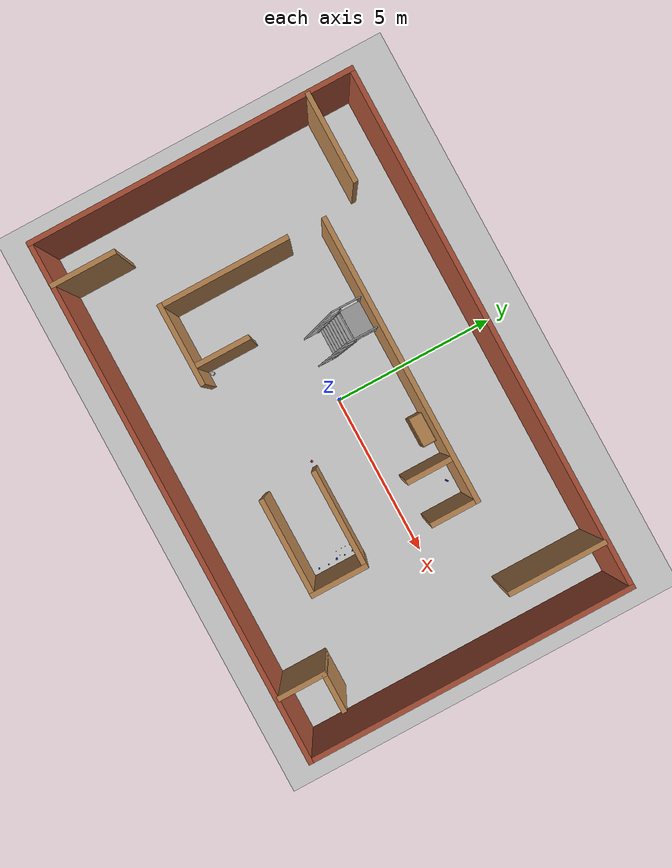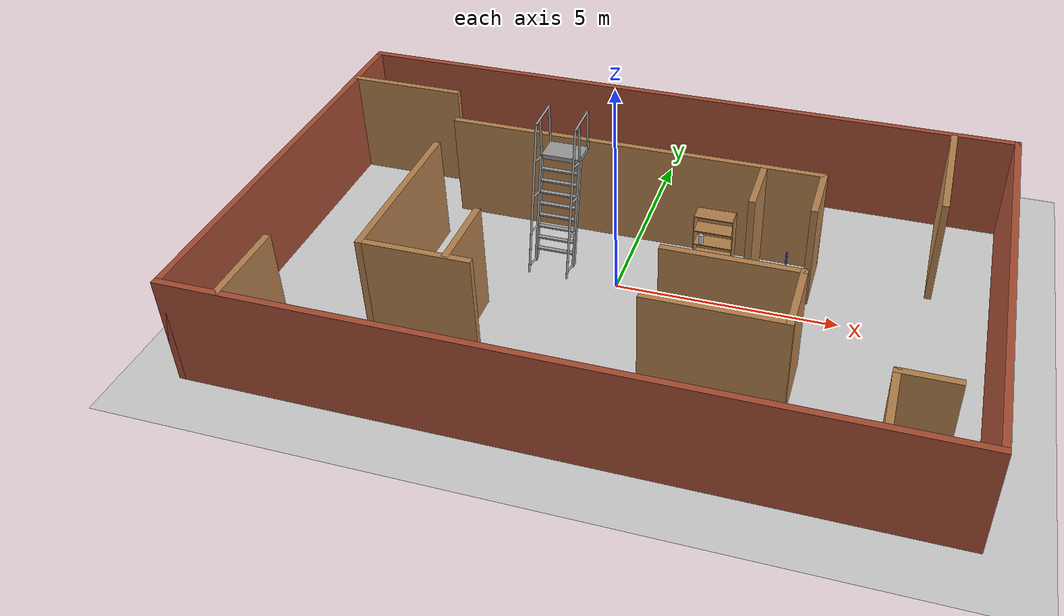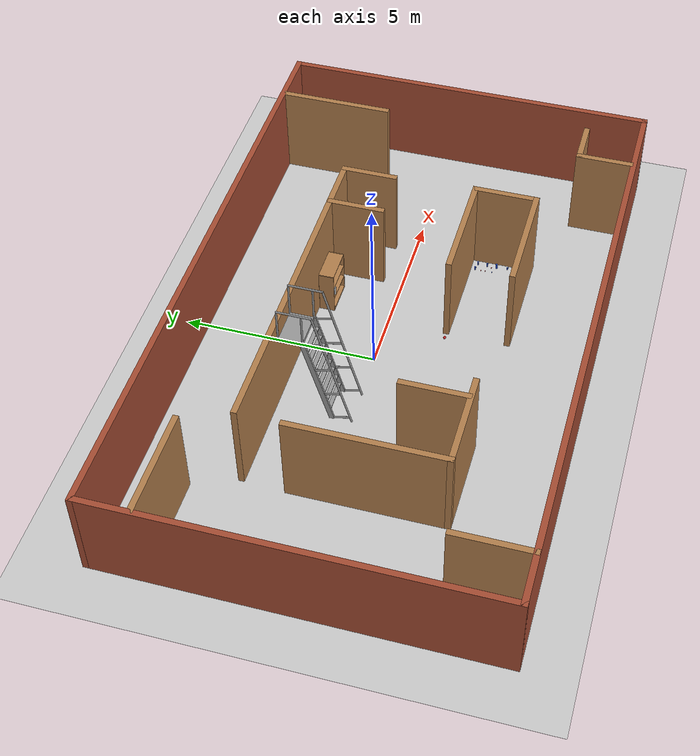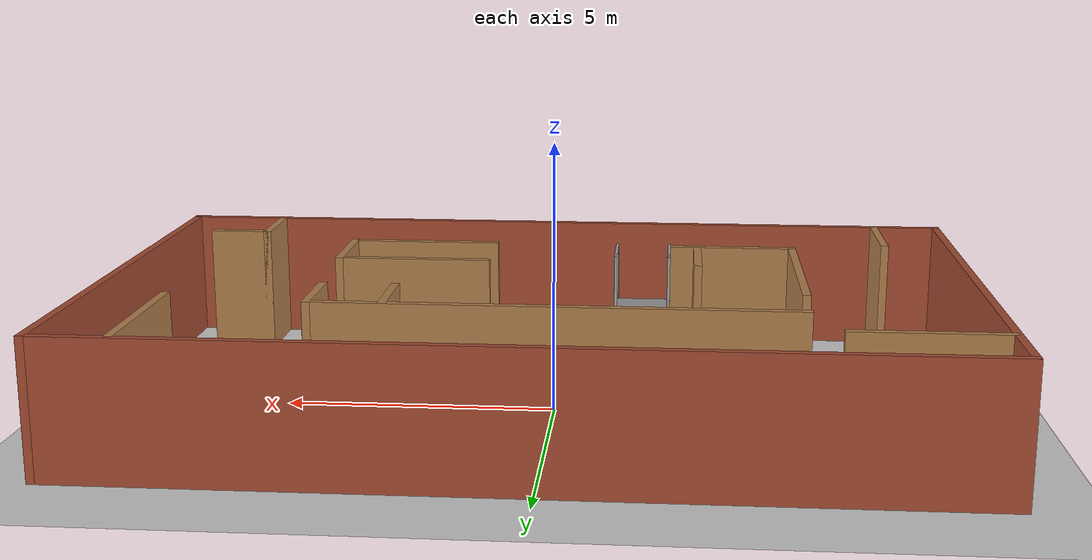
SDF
<sdf version="1.6">
 <world name="default">
  <model name="ground_plane">
   <static>1</static>
   <link name="link">
    <collision name="collision">
     <geometry><plane><normal>0 0 1</normal><size>100 100</size></plane></geometry>
     <surface><friction><ode><mu>100</mu><mu2>50</mu2></ode></friction></surface>
    </collision>
    <visual name="visual">
     <cast_shadows>0</cast_shadows>
     <geometry><plane><normal>0 0 1</normal><size>100 100</size></plane></geometry>
     <material>
      <script><uri>file://media/materials/scripts/gazebo.material</uri><name>Gazebo/Grey</name></script>
     </material>
    </visual>
   </link>
  </model>
  <model name="sim_world">
   <pose>0.267794 -0.41395 0 0 -0 0</pose>
   <link name="Wall_10">
    <collision name="Wall_10_Collision">
     <geometry><box><size>8.75 0.15 2.5</size></box></geometry>
     <pose>0 0 1.25 0 -0 0</pose>
    </collision>
    <visual name="Wall_10_Visual">
     <pose>0 0 1.25 0 -0 0</pose>
     <geometry><box><size>8.75 0.15 2.5</size></box></geometry>
     <material>
      <script><uri>file://media/materials/scripts/gazebo.material</uri><name>Gazebo/Wood</name></script>
      <ambient>1 1 1 1</ambient>
     </material>
    </visual>
    <pose>-0.406828 2.37058 0 0 -0 0</pose>
   </link>
   <link name="Wall_11">
    <collision name="Wall_11_Collision">
     <geometry><box><size>1.5 0.15 2.5</size></box></geometry>
     <pose>0 0 1.25 0 -0 0</pose>
    </collision>
    <visual name="Wall_11_Visual">
     <pose>0 0 1.25 0 -0 0</pose>
     <geometry><box><size>1.5 0.15 2.5</size></box></geometry>
     <material>
      <script><uri>file://media/materials/scripts/gazebo.material</uri><name>Gazebo/Wood</name></script>
      <ambient>1 1 1 1</ambient>
     </material>
    </visual>
    <pose>3.89317 1.69558 0 0 0 -1.5708</pose>
   </link>
   <link name="Wall_13">
    <collision name="Wall_13_Collision">
     <geometry><box><size>1.75 0.15 2.5</size></box></geometry>
     <pose>0 0 1.25 0 -0 0</pose>
    </collision>
    <visual name="Wall_13_Visual">
     <pose>0 0 1.25 0 -0 0</pose>
     <geometry><box><size>1.75 0.15 2.5</size></box></geometry>
     <material>
      <script><uri>file://media/materials/scripts/gazebo.material</uri><name>Gazebo/Wood</name></script>
      <ambient>1 1 1 1</ambient>
     </material>
    </visual>
    <pose>4.02246 -1.92918 0 0 0 -1.5708</pose>
   </link>
   <link name="Wall_14">
    <collision name="Wall_14_Collision">
     <geometry><box><size>3 0.15 2.5</size></box></geometry>
     <pose>0 0 1.25 0 -0 0</pose>
    </collision>
    <visual name="Wall_14_Visual">
     <pose>0 0 1.25 0 -0 0</pose>
     <geometry><box><size>3 0.15 2.5</size></box></geometry>
     <material>
      <script><uri>file://media/materials/scripts/gazebo.material</uri><name>Gazebo/Wood</name></script>
      <ambient>1 1 1 1</ambient>
     </material>
    </visual>
    <pose>2.59746 -2.72919 0 0 -0 3.14159</pose>
   </link>
   <link name="Wall_16">
    <collision name="Wall_16_Collision">
     <geometry><box><size>2.5 0.15 2.5</size></box></geometry>
     <pose>0 0 1.25 0 -0 0</pose>
    </collision>
    <visual name="Wall_16_Visual">
     <pose>0 0 1.25 0 -0 0</pose>
     <geometry><box><size>2.5 0.15 2.5</size></box></geometry>
     <material>
      <script><uri>file://media/materials/scripts/gazebo.material</uri><name>Gazebo/Wood</name></script>
      <ambient>1 1 1 1</ambient>
     </material>
    </visual>
    <pose>-3.58888 -2.6377 0 0 -0 3.14159</pose>
   </link>
   <link name="Wall_17">
    <collision name="Wall_17_Collision">
     <geometry><box><size>4 0.15 2.5</size></box></geometry>
     <pose>0 0 1.25 0 -0 0</pose>
    </collision>
    <visual name="Wall_17_Visual">
     <pose>0 0 1.25 0 -0 0</pose>
     <geometry><box><size>4 0.15 2.5</size></box></geometry>
     <material>
      <script><uri>file://media/materials/scripts/gazebo.material</uri><name>Gazebo/Wood</name></script>
      <ambient>1 1 1 1</ambient>
     </material>
    </visual>
    <pose>-4.76388 -0.712703 0 0 -0 1.5708</pose>
   </link>
   <link name="Wall_19">
    <collision name="Wall_19_Collision">
     <geometry><box><size>1.75 0.15 2.5</size></box></geometry>
     <pose>0 0 1.25 0 -0 0</pose>
    </collision>
    <visual name="Wall_19_Visual">
     <pose>0 0 1.25 0 -0 0</pose>
     <geometry><box><size>1.75 0.15 2.5</size></box></geometry>
     <material>
      <script><uri>file://media/materials/scripts/gazebo.material</uri><name>Gazebo/Wood</name></script>
      <ambient>1 1 1 1</ambient>
     </material>
    </visual>
    <pose>-2.89661 -1.78839 0 0 0 -1.5708</pose>
   </link>
   <link name="Wall_21">
    <collision name="Wall_21_Collision">
     <geometry><box><size>2 0.15 2.5</size></box></geometry>
     <pose>0 0 1.25 0 -0 0</pose>
    </collision>
    <visual name="Wall_21_Visual">
     <pose>0 0 1.25 0 -0 0</pose>
     <geometry><box><size>2 0.15 2.5</size></box></geometry>
     <material>
      <script><uri>file://media/materials/scripts/gazebo.material</uri><name>Gazebo/Wood</name></script>
      <ambient>1 1 1 1</ambient>
     </material>
    </visual>
    <pose>-6.63773 -3.98509 0 0 0 -1.5708</pose>
   </link>
   <link name="Wall_23">
    <collision name="Wall_23_Collision">
     <geometry><box><size>2.75 0.15 2.5</size></box></geometry>
     <pose>0 0 1.25 0 -0 0</pose>
    </collision>
    <visual name="Wall_23_Visual">
     <pose>0 0 1.25 0 -0 0</pose>
     <geometry><box><size>2.75 0.15 2.5</size></box></geometry>
     <material>
      <script><uri>file://media/materials/scripts/gazebo.material</uri><name>Gazebo/Wood</name></script>
      <ambient>1 1 1 1</ambient>
     </material>
    </visual>
    <pose>-6.56466 3.57739 0 0 -0 0</pose>
   </link>
   <link name="Wall_25">
    <collision name="Wall_25_Collision">
     <geometry><box><size>1.5 0.15 2.5</size></box></geometry>
     <pose>0 0 1.25 0 -0 0</pose>
    </collision>
    <visual name="Wall_25_Visual">
     <pose>0 0 1.25 0 -0 0</pose>
     <geometry><box><size>1.5 0.15 2.5</size></box></geometry>
     <material>
      <script><uri>file://media/materials/scripts/gazebo.material</uri><name>Gazebo/Wood</name></script>
      <ambient>1 1 1 1</ambient>
     </material>
    </visual>
    <pose>2.57429 1.67546 0 0 0 -1.5708</pose>
   </link>
   <link name="Wall_27">
    <collision name="Wall_27_Collision">
     <geometry><box><size>3 0.15 2.5</size></box></geometry>
     <pose>0 0 1.25 0 -0 0</pose>
    </collision>
    <visual name="Wall_27_Visual">
     <pose>0 0 1.25 0 -0 0</pose>
     <geometry><box><size>3 0.15 2.5</size></box></geometry>
     <material>
      <script><uri>file://media/materials/scripts/gazebo.material</uri><name>Gazebo/Wood</name></script>
      <ambient>1 1 1 1</ambient>
     </material>
    </visual>
    <pose>6.51654 3.39943 0 0 0 -1.5708</pose>
   </link>
   <link name="Wall_29">
    <collision name="Wall_29_Collision">
     <geometry><box><size>1.5 0.15 2.5</size></box></geometry>
     <pose>0 0 1.25 0 -0 0</pose>
    </collision>
    <visual name="Wall_29_Visual">
     <pose>0 0 1.25 0 -0 0</pose>
     <geometry><box><size>1.5 0.15 2.5</size></box></geometry>
     <material>
      <script><uri>file://media/materials/scripts/gazebo.material</uri><name>Gazebo/Wood</name></script>
      <ambient>1 1 1 1</ambient>
     </material>
    </visual>
    <pose>6.03382 -4.15508 0 0 -0 1.5708</pose>
   </link>
   <link name="Wall_30">
    <collision name="Wall_30_Collision">
     <geometry><box><size>1.25 0.15 2.5</size></box></geometry>
     <pose>0 0 1.25 0 -0 0</pose>
    </collision>
    <visual name="Wall_30_Visual">
     <pose>0 0 1.25 0 -0 0</pose>
     <geometry><box><size>1.25 0.15 2.5</size></box></geometry>
     <material>
      <script><uri>file://media/materials/scripts/gazebo.material</uri><name>Gazebo/Wood</name></script>
      <ambient>1 1 1 1</ambient>
     </material>
    </visual>
    <pose>6.58382 -3.48008 0 0 -0 0</pose>
   </link>
   <link name="Wall_32">
    <collision name="Wall_32_Collision">
     <geometry><box><size>3 0.15 2.5</size></box></geometry>
     <pose>0 0 1.25 0 -0 0</pose>
    </collision>
    <visual name="Wall_32_Visual">
     <pose>0 0 1.25 0 -0 0</pose>
     <geometry><box><size>3 0.15 2.5</size></box></geometry>
     <material>
      <script><uri>file://media/materials/scripts/gazebo.material</uri><name>Gazebo/Wood</name></script>
      <ambient>1 1 1 1</ambient>
     </material>
    </visual>
    <pose>2.59746 -1.12919 0 0 -0 3.14159</pose>
   </link>
   <link name="Wall_4">
    <collision name="Wall_4_Collision">
     <geometry><box><size>10 0.15 2.5</size></box></geometry>
     <pose>0 0 1.25 0 -0 0</pose>
    </collision>
    <visual name="Wall_4_Visual">
     <pose>0 0 1.25 0 -0 0</pose>
     <geometry><box><size>10 0.15 2.5</size></box></geometry>
     <material>
      <script><uri>file://media/materials/scripts/gazebo.material</uri><name>Gazebo/Bricks</name></script>
      <ambient>1 1 1 1</ambient>
     </material>
    </visual>
    <pose>-7.925 0 0 0 0 -1.5708</pose>
   </link>
   <link name="Wall_5">
    <collision name="Wall_5_Collision">
     <geometry><box><size>16 0.15 2.5</size></box></geometry>
     <pose>0 0 1.25 0 -0 0</pose>
    </collision>
    <visual name="Wall_5_Visual">
     <pose>0 0 1.25 0 -0 0</pose>
     <geometry><box><size>16 0.15 2.5</size></box></geometry>
     <material>
      <script><uri>file://media/materials/scripts/gazebo.material</uri><name>Gazebo/Bricks</name></script>
      <ambient>1 1 1 1</ambient>
     </material>
    </visual>
    <pose>0 -4.925 0 0 -0 0</pose>
   </link>
   <link name="Wall_6">
    <collision name="Wall_6_Collision">
     <geometry><box><size>10 0.15 2.5</size></box></geometry>
     <pose>0 0 1.25 0 -0 0</pose>
    </collision>
    <visual name="Wall_6_Visual">
     <pose>0 0 1.25 0 -0 0</pose>
     <geometry><box><size>10 0.15 2.5</size></box></geometry>
     <material>
      <script><uri>file://media/materials/scripts/gazebo.material</uri><name>Gazebo/Bricks</name></script>
      <ambient>1 1 1 1</ambient>
     </material>
    </visual>
    <pose>7.925 0 0 0 -0 1.5708</pose>
   </link>
   <link name="Wall_7">
    <collision name="Wall_7_Collision">
     <geometry><box><size>16 0.15 2.5</size></box></geometry>
     <pose>0 0 1.25 0 -0 0</pose>
    </collision>
    <visual name="Wall_7_Visual">
     <pose>0 0 1.25 0 -0 0</pose>
     <geometry><box><size>16 0.15 2.5</size></box></geometry>
     <material>
      <script><uri>file://media/materials/scripts/gazebo.material</uri><name>Gazebo/Bricks</name></script>
      <ambient>1 1 1 1</ambient>
     </material>
    </visual>
    <pose>0 4.925 0 0 -0 3.14159</pose>
   </link>
   <static>1</static>
  </model>
  <model name="beer">
   <link name="link">
    <pose>0 0 0.115 0 -0 0</pose>
    <inertial>
     <mass>0.39</mass>
     <inertia><ixx>0.00058</ixx><ixy>0</ixy><ixz>0</ixz><iyy>0.00058</iyy><iyz>0</iyz><izz>0.00019</izz></inertia>
    </inertial>
    <collision name="collision">
     <geometry><cylinder><radius>0.055</radius><length>0.23</length></cylinder></geometry>
    </collision>
    <visual name="visual">
     <geometry><cylinder><radius>0.055</radius><length>0.23</length></cylinder></geometry>
     <material>
      <script>
       <uri>model://beer/materials/scripts</uri>
       <uri>model://beer/materials/textures</uri>
       <name>Beer/Diffuse</name>
      </script>
     </material>
    </visual>
   </link>
   <pose>-2.46122 -2.87947 -7e-06 -1e-06 -0 -5.2e-05</pose>
  </model>
  <model name="bookshelf">
   <static>1</static>
   <link name="link">
    <inertial><mass>1</mass></inertial>
    <collision name="back">
     <pose>0 0.005 0.6 0 -0 0</pose>
     <geometry><box><size>0.9 0.01 1.2</size></box></geometry>
    </collision>
    <visual name="visual1">
     <pose>0 0.005 0.6 0 -0 0</pose>
     <geometry><box><size>0.9 0.01 1.2</size></box></geometry>
     <material>
      <script><uri>file://media/materials/scripts/gazebo.material</uri><name>Gazebo/Wood</name></script>
     </material>
    </visual>
    <collision name="left_side">
     <pose>0.45 -0.195 0.6 0 -0 0</pose>
     <geometry><box><size>0.02 0.4 1.2</size></box></geometry>
    </collision>
    <visual name="visual2">
     <pose>0.45 -0.195 0.6 0 -0 0</pose>
     <geometry><box><size>0.02 0.4 1.2</size></box></geometry>
     <material>
      <script><uri>file://media/materials/scripts/gazebo.material</uri><name>Gazebo/Wood</name></script>
     </material>
    </visual>
    <collision name="right_side">
     <pose>-0.45 -0.195 0.6 0 -0 0</pose>
     <geometry><box><size>0.02 0.4 1.2</size></box></geometry>
    </collision>
    <visual name="visual3">
     <pose>-0.45 -0.195 0.6 0 -0 0</pose>
     <geometry><box><size>0.02 0.4 1.2</size></box></geometry>
     <material>
      <script><uri>file://media/materials/scripts/gazebo.material</uri><name>Gazebo/Wood</name></script>
     </material>
    </visual>
    <collision name="bottom">
     <pose>0 -0.195 0.03 0 -0 0</pose>
     <geometry><box><size>0.88 0.4 0.06</size></box></geometry>
    </collision>
    <visual name="visual4">
     <pose>0 -0.195 0.03 0 -0 0</pose>
     <geometry><box><size>0.88 0.4 0.06</size></box></geometry>
     <material>
      <script><uri>file://media/materials/scripts/gazebo.material</uri><name>Gazebo/Wood</name></script>
     </material>
    </visual>
    <collision name="top">
     <pose>0 -0.195 1.19 0 -0 0</pose>
     <geometry><box><size>0.88 0.4 0.02</size></box></geometry>
    </collision>
    <visual name="visual5">
     <pose>0 -0.195 1.19 0 -0 0</pose>
     <geometry><box><size>0.88 0.4 0.02</size></box></geometry>
     <material>
      <script><uri>file://media/materials/scripts/gazebo.material</uri><name>Gazebo/Wood</name></script>
     </material>
    </visual>
    <collision name="low_shelf">
     <pose>0 -0.195 0.43 0 -0 0</pose>
     <geometry><box><size>0.88 0.4 0.02</size></box></geometry>
    </collision>
    <visual name="visual6">
     <pose>0 -0.195 0.43 0 -0 0</pose>
     <geometry><box><size>0.88 0.4 0.02</size></box></geometry>
     <material>
      <script><uri>file://media/materials/scripts/gazebo.material</uri><name>Gazebo/Wood</name></script>
     </material>
    </visual>
    <collision name="high_shelf">
     <pose>0 -0.195 0.8 0 -0 0</pose>
     <geometry><box><size>0.88 0.4 0.02</size></box></geometry>
    </collision>
    <visual name="visual7">
     <pose>0 -0.195 0.8 0 -0 0</pose>
     <geometry><box><size>0.88 0.4 0.02</size></box></geometry>
     <material>
      <script><uri>file://media/materials/scripts/gazebo.material</uri><name>Gazebo/Wood</name></script>
     </material>
    </visual>
   </link>
   <pose>1.85905 1.85884 0 0 -0 0</pose>
  </model>
  <model name="beer_0">
   <link name="link">
    <pose>0 0 0.115 0 -0 0</pose>
    <inertial>
     <mass>0.39</mass>
     <inertia><ixx>0.00058</ixx><ixy>0</ixy><ixz>0</ixz><iyy>0.00058</iyy><iyz>0</iyz><izz>0.00019</izz></inertia>
    </inertial>
    <collision name="collision">
     <geometry><cylinder><radius>0.055</radius><length>0.23</length></cylinder></geometry>
    </collision>
    <visual name="visual">
     <geometry><cylinder><radius>0.055</radius><length>0.23</length></cylinder></geometry>
     <material>
      <script>
       <uri>model://beer/materials/scripts</uri>
       <uri>model://beer/materials/textures</uri>
       <name>Beer/Diffuse</name>
      </script>
     </material>
    </visual>
   </link>
   <pose>1.58661 1.52296 0.440001 7e-06 -1.7e-05 0.002495</pose>
  </model>
  <model name="cricket_ball">
   <link name="link">
    <pose>0 0 0.0375 0 -0 0</pose>
    <inertial>
     <mass>0.1467</mass>
     <inertia>
      <ixx>8.25187e-05</ixx>
      <ixy>0</ixy>
      <ixz>0</ixz>
      <iyy>8.25187e-05</iyy>
      <iyz>0</iyz>
      <izz>8.25187e-05</izz>
     </inertia>
    </inertial>
    <collision name="collision">
     <geometry><sphere><radius>0.0375</radius></sphere></geometry>
     <surface>
      <contact>
       <poissons_ratio>0.347</poissons_ratio>
       <elastic_modulus>8.8e+09</elastic_modulus>
       <ode><kp>100000</kp><kd>100</kd><max_vel>100</max_vel><min_depth>0.001</min_depth></ode>
      </contact>
      <friction>
       <torsional>
        <coefficient>1</coefficient>
        <use_patch_radius>0</use_patch_radius>
        <surface_radius>0.01</surface_radius>
       </torsional>
      </friction>
     </surface>
    </collision>
    <visual name="visual">
     <geometry><sphere><radius>0.0375</radius></sphere></geometry>
     <material>
      <script><uri>file://media/materials/scripts/gazebo.material</uri><name>Gazebo/Red</name></script>
     </material>
    </visual>
    <velocity_decay><linear>0</linear><angular>0.005</angular></velocity_decay>
   </link>
   <pose>1.19589 -1.5526 -0.001014 0 -0 0</pose>
  </model>
  <model name="my_cylinder_blue_0">
   <static>0</static>
   <link name="link">
    <collision name="collision">
     <geometry><cylinder><radius>0.02</radius><length>0.1</length></cylinder></geometry>
     <surface><friction><ode><mu>100</mu><mu2>50</mu2></ode></friction></surface>
    </collision>
    <visual name="visual">
     <geometry><cylinder><radius>0.02</radius><length>0.1</length></cylinder></geometry>
     <material>
      <script><uri>file://media/materials/scripts/gazebo.material</uri><name>Gazebo/Blue</name></script>
     </material>
    </visual>
    <inertial>
     <inertia><ixx>1</ixx><ixy>0</ixy><ixz>0</ixz><iyy>1</iyy><iyz>0</iyz><izz>1</izz></inertia>
     <mass>1</mass>
    </inertial>
   </link>
   <pose>4.07575 -1.76243 0.049991 -1e-06 -2.7e-05 2e-06</pose>
  </model>
  <model name="my_cylinder_blue_1">
   <static>0</static>
   <link name="link">
    <collision name="collision">
     <geometry><cylinder><radius>0.02</radius><length>0.1</length></cylinder></geometry>
     <surface><friction><ode><mu>100</mu><mu2>50</mu2></ode></friction></surface>
    </collision>
    <visual name="visual">
     <geometry><cylinder><radius>0.02</radius><length>0.1</length></cylinder></geometry>
     <material>
      <script><uri>file://media/materials/scripts/gazebo.material</uri><name>Gazebo/Blue</name></script>
     </material>
    </visual>
    <inertial>
     <inertia><ixx>1</ixx><ixy>0</ixy><ixz>0</ixz><iyy>1</iyy><iyz>0</iyz><izz>1</izz></inertia>
     <mass>1</mass>
    </inertial>
   </link>
   <pose>4.07908 -2.01958 0.049991 -0 -4e-06 -3e-06</pose>
  </model>
  <model name="my_cylinder_blue_2">
   <static>0</static>
   <link name="link">
    <collision name="collision">
     <geometry><cylinder><radius>0.0251442</radius><length>0.139254</length></cylinder></geometry>
     <surface><friction><ode><mu>100</mu><mu2>50</mu2></ode></friction></surface>
    </collision>
    <visual name="visual">
     <geometry><cylinder><radius>0.0251442</radius><length>0.139254</length></cylinder></geometry>
     <material>
      <script><uri>file://media/materials/scripts/gazebo.material</uri><name>Gazebo/Blue</name></script>
     </material>
    </visual>
    <inertial>
     <inertia><ixx>1</ixx><ixy>0</ixy><ixz>0</ixz><iyy>1</iyy><iyz>0</iyz><izz>1</izz></inertia>
     <mass>1</mass>
    </inertial>
   </link>
   <pose>4.07262 -2.2745 0.069626 -2e-06 -2e-06 3e-06</pose>
  </model>
  <model name="my_cylinder_blue_3">
   <static>0</static>
   <link name="link">
    <collision name="collision">
     <geometry><cylinder><radius>0.02</radius><length>0.0564455</length></cylinder></geometry>
     <surface><friction><ode><mu>100</mu><mu2>50</mu2></ode></friction></surface>
    </collision>
    <visual name="visual">
     <geometry><cylinder><radius>0.02</radius><length>0.0564455</length></cylinder></geometry>
     <material>
      <script><uri>file://media/materials/scripts/gazebo.material</uri><name>Gazebo/Blue</name></script>
     </material>
    </visual>
    <inertial>
     <inertia><ixx>1</ixx><ixy>0</ixy><ixz>0</ixz><iyy>1</iyy><iyz>0</iyz><izz>1</izz></inertia>
     <mass>1</mass>
    </inertial>
   </link>
   <pose>4.10909 -2.56673 0.028213 -5e-06 -2.7e-05 0</pose>
  </model>
  <model name="my_cylinder_blue_4">
   <static>0</static>
   <link name="link">
    <collision name="collision">
     <geometry><cylinder><radius>0.02</radius><length>0.1</length></cylinder></geometry>
     <surface><friction><ode><mu>100</mu><mu2>50</mu2></ode></friction></surface>
    </collision>
    <visual name="visual">
     <geometry><cylinder><radius>0.02</radius><length>0.1</length></cylinder></geometry>
     <material>
      <script><uri>file://media/materials/scripts/gazebo.material</uri><name>Gazebo/Blue</name></script>
     </material>
    </visual>
    <inertial>
     <inertia><ixx>1</ixx><ixy>0</ixy><ixz>0</ixz><iyy>1</iyy><iyz>0</iyz><izz>1</izz></inertia>
     <mass>1</mass>
    </inertial>
   </link>
   <pose>4.08029 -2.86377 0.05 -3e-06 4e-06 0</pose>
  </model>
  <model name="my_cylinder_blue_5">
   <static>0</static>
   <link name="link">
    <collision name="collision">
     <geometry><cylinder><radius>0.02</radius><length>0.1</length></cylinder></geometry>
     <surface><friction><ode><mu>100</mu><mu2>50</mu2></ode></friction></surface>
    </collision>
    <visual name="visual">
     <geometry><cylinder><radius>0.02</radius><length>0.1</length></cylinder></geometry>
     <material>
      <script><uri>file://media/materials/scripts/gazebo.material</uri><name>Gazebo/Blue</name></script>
     </material>
    </visual>
    <inertial>
     <inertia><ixx>1</ixx><ixy>0</ixy><ixz>0</ixz><iyy>1</iyy><iyz>0</iyz><izz>1</izz></inertia>
     <mass>1</mass>
    </inertial>
   </link>
   <pose>3.8703 -1.73368 0.05 0 1e-06 -4e-06</pose>
  </model>
  <model name="my_box_red">
   <static>0</static>
   <link name="link">
    <collision name="collision">
     <geometry><box><size>0.02 0.02 0.03</size></box></geometry>
     <surface><friction><ode><mu>100000</mu><mu2>50000</mu2></ode></friction></surface>
    </collision>
    <visual name="visual">
     <geometry><box><size>0.02 0.02 0.03</size></box></geometry>
     <material>
      <script><uri>file://media/materials/scripts/gazebo.material</uri><name>Gazebo/Red</name></script>
     </material>
    </visual>
    <inertial>
     <inertia><ixx>1</ixx><ixy>0</ixy><ixz>0</ixz><iyy>1</iyy><iyz>0</iyz><izz>1</izz></inertia>
     <mass>1</mass>
    </inertial>
   </link>
   <pose>3.86287 -1.88828 0.015 1e-06 -1e-06 0</pose>
  </model>
  <model name="my_box_red_0">
   <static>0</static>
   <link name="link">
    <collision name="collision">
     <geometry><box><size>0.02 0.02 0.03</size></box></geometry>
     <surface><friction><ode><mu>100000</mu><mu2>50000</mu2></ode></friction></surface>
    </collision>
    <visual name="visual">
     <geometry><box><size>0.02 0.02 0.03</size></box></geometry>
     <material>
      <script><uri>file://media/materials/scripts/gazebo.material</uri><name>Gazebo/Red</name></script>
     </material>
    </visual>
    <inertial>
     <inertia><ixx>1</ixx><ixy>0</ixy><ixz>0</ixz><iyy>1</iyy><iyz>0</iyz><izz>1</izz></inertia>
     <mass>1</mass>
    </inertial>
   </link>
   <pose>3.87387 -2.0082 0.015 -4e-06 1.7e-05 0</pose>
  </model>
  <model name="my_box_blue">
   <static>0</static>
   <link name="link">
    <collision name="collision">
     <geometry><box><size>0.02 0.02 0.03</size></box></geometry>
     <surface><friction><ode><mu>100000</mu><mu2>50000</mu2></ode></friction></surface>
    </collision>
    <visual name="visual">
     <geometry><box><size>0.02 0.02 0.03</size></box></geometry>
     <material>
      <script><uri>file://media/materials/scripts/gazebo.material</uri><name>Gazebo/Blue</name></script>
     </material>
    </visual>
    <inertial>
     <inertia><ixx>1</ixx><ixy>0</ixy><ixz>0</ixz><iyy>1</iyy><iyz>0</iyz><izz>1</izz></inertia>
     <mass>1</mass>
    </inertial>
   </link>
   <pose>3.86993 -2.18979 0.015 -6e-06 -2e-06 0</pose>
  </model>
  <model name="my_box_red_1">
   <static>0</static>
   <link name="link">
    <collision name="collision">
     <geometry><box><size>0.02 0.02 0.03</size></box></geometry>
     <surface><friction><ode><mu>100000</mu><mu2>50000</mu2></ode></friction></surface>
    </collision>
    <visual name="visual">
     <geometry><box><size>0.02 0.02 0.03</size></box></geometry>
     <material>
      <script><uri>file://media/materials/scripts/gazebo.material</uri><name>Gazebo/Red</name></script>
     </material>
    </visual>
    <inertial>
     <inertia><ixx>1</ixx><ixy>0</ixy><ixz>0</ixz><iyy>1</iyy><iyz>0</iyz><izz>1</izz></inertia>
     <mass>1</mass>
    </inertial>
   </link>
   <pose>4.0255 -2.14352 0.015 6e-06 -1e-06 0</pose>
  </model>
  <model name="ladder_75deg_2rails">
   <static>1</static>
   <link name="step0">
    <pose>0 0.071453 0.266667 0 -0 0</pose>
    <inertial>
     <mass>9.75482</mass>
     <inertia>
      <ixx>0.00957124</ixx>
      <iyy>0.65963</iyy>
      <izz>0.666842</izz>
      <ixy>0</ixy>
      <ixz>0</ixz>
      <iyz>0</iyz>
     </inertia>
    </inertial>
    <collision name="collision"><geometry><box><size>0.9 0.1016 0.0381</size></box></geometry></collision>
    <visual name="visual">
     <geometry><box><size>0.9 0.1016 0.0381</size></box></geometry>
     <material>
      <script><uri>file://media/materials/scripts/gazebo.material</uri><name>Gazebo/Grey</name></script>
     </material>
    </visual>
   </link>
   <link name="step1">
    <pose>0 0.142906 0.533333 0 -0 0</pose>
    <inertial>
     <mass>9.75482</mass>
     <inertia>
      <ixx>0.00957124</ixx>
      <iyy>0.65963</iyy>
      <izz>0.666842</izz>
      <ixy>0</ixy>
      <ixz>0</ixz>
      <iyz>0</iyz>
     </inertia>
    </inertial>
    <collision name="collision"><geometry><box><size>0.9 0.1016 0.0381</size></box></geometry></collision>
    <visual name="visual">
     <geometry><box><size>0.9 0.1016 0.0381</size></box></geometry>
     <material>
      <script><uri>file://media/materials/scripts/gazebo.material</uri><name>Gazebo/Grey</name></script>
     </material>
    </visual>
   </link>
   <link name="step2">
    <pose>0 0.214359 0.8 0 -0 0</pose>
    <inertial>
     <mass>9.75482</mass>
     <inertia>
      <ixx>0.00957124</ixx>
      <iyy>0.65963</iyy>
      <izz>0.666842</izz>
      <ixy>0</ixy>
      <ixz>0</ixz>
      <iyz>0</iyz>
     </inertia>
    </inertial>
    <collision name="collision"><geometry><box><size>0.9 0.1016 0.0381</size></box></geometry></collision>
    <visual name="visual">
     <geometry><box><size>0.9 0.1016 0.0381</size></box></geometry>
     <material>
      <script><uri>file://media/materials/scripts/gazebo.material</uri><name>Gazebo/Grey</name></script>
     </material>
    </visual>
   </link>
   <link name="step3">
    <pose>0 0.285812 1.06667 0 -0 0</pose>
    <inertial>
     <mass>9.75482</mass>
     <inertia>
      <ixx>0.00957124</ixx>
      <iyy>0.65963</iyy>
      <izz>0.666842</izz>
      <ixy>0</ixy>
      <ixz>0</ixz>
      <iyz>0</iyz>
     </inertia>
    </inertial>
    <collision name="collision"><geometry><box><size>0.9 0.1016 0.0381</size></box></geometry></collision>
    <visual name="visual">
     <geometry><box><size>0.9 0.1016 0.0381</size></box></geometry>
     <material>
      <script><uri>file://media/materials/scripts/gazebo.material</uri><name>Gazebo/Grey</name></script>
     </material>
    </visual>
   </link>
   <link name="step4">
    <pose>0 0.357266 1.33333 0 -0 0</pose>
    <inertial>
     <mass>9.75482</mass>
     <inertia>
      <ixx>0.00957124</ixx>
      <iyy>0.65963</iyy>
      <izz>0.666842</izz>
      <ixy>0</ixy>
      <ixz>0</ixz>
      <iyz>0</iyz>
     </inertia>
    </inertial>
    <collision name="collision"><geometry><box><size>0.9 0.1016 0.0381</size></box></geometry></collision>
    <visual name="visual">
     <geometry><box><size>0.9 0.1016 0.0381</size></box></geometry>
     <material>
      <script><uri>file://media/materials/scripts/gazebo.material</uri><name>Gazebo/Grey</name></script>
     </material>
    </visual>
   </link>
   <link name="step5">
    <pose>0 0.428719 1.6 0 -0 0</pose>
    <inertial>
     <mass>9.75482</mass>
     <inertia>
      <ixx>0.00957124</ixx>
      <iyy>0.65963</iyy>
      <izz>0.666842</izz>
      <ixy>0</ixy>
      <ixz>0</ixz>
      <iyz>0</iyz>
     </inertia>
    </inertial>
    <collision name="collision"><geometry><box><size>0.9 0.1016 0.0381</size></box></geometry></collision>
    <visual name="visual">
     <geometry><box><size>0.9 0.1016 0.0381</size></box></geometry>
     <material>
      <script><uri>file://media/materials/scripts/gazebo.material</uri><name>Gazebo/Grey</name></script>
     </material>
    </visual>
   </link>
   <link name="step6">
    <pose>0 0.500172 1.86667 0 -0 0</pose>
    <inertial>
     <mass>9.75482</mass>
     <inertia>
      <ixx>0.00957124</ixx>
      <iyy>0.65963</iyy>
      <izz>0.666842</izz>
      <ixy>0</ixy>
      <ixz>0</ixz>
      <iyz>0</iyz>
     </inertia>
    </inertial>
    <collision name="collision"><geometry><box><size>0.9 0.1016 0.0381</size></box></geometry></collision>
    <visual name="visual">
     <geometry><box><size>0.9 0.1016 0.0381</size></box></geometry>
     <material>
      <script><uri>file://media/materials/scripts/gazebo.material</uri><name>Gazebo/Grey</name></script>
     </material>
    </visual>
   </link>
   <link name="step7">
    <pose>0 0.571625 2.13333 0 -0 0</pose>
    <inertial>
     <mass>9.75482</mass>
     <inertia>
      <ixx>0.00957124</ixx>
      <iyy>0.65963</iyy>
      <izz>0.666842</izz>
      <ixy>0</ixy>
      <ixz>0</ixz>
      <iyz>0</iyz>
     </inertia>
    </inertial>
    <collision name="collision"><geometry><box><size>0.9 0.1016 0.0381</size></box></geometry></collision>
    <visual name="visual">
     <geometry><box><size>0.9 0.1016 0.0381</size></box></geometry>
     <material>
      <script><uri>file://media/materials/scripts/gazebo.material</uri><name>Gazebo/Grey</name></script>
     </material>
    </visual>
   </link>
   <link name="landing">
    <pose>0 0.943078 2.4 0 -0 0</pose>
    <inertial>
     <mass>57.6072</mass>
     <inertia><ixx>1.73518</ixx><iyy>3.89545</iyy><izz>5.6167</izz><ixy>0</ixy><ixz>0</ixz><iyz>0</iyz></inertia>
    </inertial>
    <collision name="collision"><geometry><box><size>0.9 0.6 0.1016</size></box></geometry></collision>
    <visual name="visual">
     <geometry><box><size>0.9 0.6 0.1016</size></box></geometry>
     <material>
      <script><uri>file://media/materials/scripts/gazebo.material</uri><name>Gazebo/Grey</name></script>
     </material>
    </visual>
   </link>
   <link name="left_side_wall">
    <pose>-0.45 0.321539 1.2 1.309 -0 0</pose>
    <collision name="collision"><geometry><box><size>0.0508 2.56466 0.13</size></box></geometry></collision>
    <visual name="visual">
     <geometry><box><size>0.0508 2.56466 0.13</size></box></geometry>
     <material>
      <script><uri>file://media/materials/scripts/gazebo.material</uri><name>Gazebo/Grey</name></script>
     </material>
    </visual>
   </link>
   <link name="right_side_wall">
    <pose>0.45 0.321539 1.2 1.309 -0 0</pose>
    <collision name="collision"><geometry><box><size>0.0508 2.56466 0.13</size></box></geometry></collision>
    <visual name="visual">
     <geometry><box><size>0.0508 2.56466 0.13</size></box></geometry>
     <material>
      <script><uri>file://media/materials/scripts/gazebo.material</uri><name>Gazebo/Grey</name></script>
     </material>
    </visual>
   </link>
   <link name="left_railing_long">
    <pose>-0.45 -0.053461 1.66651 -0.261799 0 0</pose>
    <collision name="collision">
     <geometry><cylinder><radius>0.02413</radius><length>3.51529</length></cylinder></geometry>
    </collision>
    <visual name="visual">
     <geometry><cylinder><radius>0.02413</radius><length>3.51529</length></cylinder></geometry>
     <material>
      <script><uri>file://media/materials/scripts/gazebo.material</uri><name>Gazebo/Grey</name></script>
     </material>
    </visual>
   </link>
   <link name="left_railing_upright0">
    <pose>-0.45 -0.210089 0.056293 1.309 -0 0</pose>
    <collision name="collision">
     <geometry><cylinder><radius>0.02413</radius><length>0.482963</length></cylinder></geometry>
    </collision>
    <visual name="visual">
     <geometry><cylinder><radius>0.02413</radius><length>0.482963</length></cylinder></geometry>
     <material>
      <script><uri>file://media/materials/scripts/gazebo.material</uri><name>Gazebo/Grey</name></script>
     </material>
    </visual>
   </link>
   <link name="left_railing_upright1">
    <pose>-0.45 0.00427 0.856293 1.309 -0 0</pose>
    <collision name="collision">
     <geometry><cylinder><radius>0.02413</radius><length>0.482963</length></cylinder></geometry>
    </collision>
    <visual name="visual">
     <geometry><cylinder><radius>0.02413</radius><length>0.482963</length></cylinder></geometry>
     <material>
      <script><uri>file://media/materials/scripts/gazebo.material</uri><name>Gazebo/Grey</name></script>
     </material>
    </visual>
   </link>
   <link name="left_railing_upright2">
    <pose>-0.45 0.21863 1.65629 1.309 -0 0</pose>
    <collision name="collision">
     <geometry><cylinder><radius>0.02413</radius><length>0.482963</length></cylinder></geometry>
    </collision>
    <visual name="visual">
     <geometry><cylinder><radius>0.02413</radius><length>0.482963</length></cylinder></geometry>
     <material>
      <script><uri>file://media/materials/scripts/gazebo.material</uri><name>Gazebo/Grey</name></script>
     </material>
    </visual>
   </link>
   <link name="left_railing_upright3">
    <pose>-0.45 0.432989 2.45629 1.309 -0 0</pose>
    <collision name="collision">
     <geometry><cylinder><radius>0.02413</radius><length>0.482963</length></cylinder></geometry>
    </collision>
    <visual name="visual">
     <geometry><cylinder><radius>0.02413</radius><length>0.482963</length></cylinder></geometry>
     <material>
      <script><uri>file://media/materials/scripts/gazebo.material</uri><name>Gazebo/Grey</name></script>
     </material>
    </visual>
   </link>
   <link name="left_railing_landing_top">
    <pose>-0.45 0.818078 3.35714 1.5708 -0 0</pose>
    <collision name="collision">
     <geometry><cylinder><radius>0.02413</radius><length>0.87413</length></cylinder></geometry>
    </collision>
    <visual name="visual">
     <geometry><cylinder><radius>0.02413</radius><length>0.87413</length></cylinder></geometry>
     <material>
      <script><uri>file://media/materials/scripts/gazebo.material</uri><name>Gazebo/Grey</name></script>
     </material>
    </visual>
   </link>
   <link name="left_railing_landing_upright_0">
    <pose>-0.45 0.643078 2.86651 0 -0 0</pose>
    <collision name="collision">
     <geometry><cylinder><radius>0.02413</radius><length>0.933013</length></cylinder></geometry>
    </collision>
    <visual name="visual">
     <geometry><cylinder><radius>0.02413</radius><length>0.933013</length></cylinder></geometry>
     <material>
      <script><uri>file://media/materials/scripts/gazebo.material</uri><name>Gazebo/Grey</name></script>
     </material>
    </visual>
   </link>
   <link name="left_railing_landing_upright_1">
    <pose>-0.45 1.24308 2.86651 0 -0 0</pose>
    <collision name="collision">
     <geometry><cylinder><radius>0.02413</radius><length>0.933013</length></cylinder></geometry>
    </collision>
    <visual name="visual">
     <geometry><cylinder><radius>0.02413</radius><length>0.933013</length></cylinder></geometry>
     <material>
      <script><uri>file://media/materials/scripts/gazebo.material</uri><name>Gazebo/Grey</name></script>
     </material>
    </visual>
   </link>
   <link name="right_railing_long">
    <pose>0.45 -0.053461 1.66651 -0.261799 0 0</pose>
    <collision name="collision">
     <geometry><cylinder><radius>0.02413</radius><length>3.51529</length></cylinder></geometry>
    </collision>
    <visual name="visual">
     <geometry><cylinder><radius>0.02413</radius><length>3.51529</length></cylinder></geometry>
     <material>
      <script><uri>file://media/materials/scripts/gazebo.material</uri><name>Gazebo/Grey</name></script>
     </material>
    </visual>
   </link>
   <link name="right_railing_upright0">
    <pose>0.45 -0.210089 0.056293 1.309 -0 0</pose>
    <collision name="collision">
     <geometry><cylinder><radius>0.02413</radius><length>0.482963</length></cylinder></geometry>
    </collision>
    <visual name="visual">
     <geometry><cylinder><radius>0.02413</radius><length>0.482963</length></cylinder></geometry>
     <material>
      <script><uri>file://media/materials/scripts/gazebo.material</uri><name>Gazebo/Grey</name></script>
     </material>
    </visual>
   </link>
   <link name="right_railing_upright1">
    <pose>0.45 0.00427 0.856293 1.309 -0 0</pose>
    <collision name="collision">
     <geometry><cylinder><radius>0.02413</radius><length>0.482963</length></cylinder></geometry>
    </collision>
    <visual name="visual">
     <geometry><cylinder><radius>0.02413</radius><length>0.482963</length></cylinder></geometry>
     <material>
      <script><uri>file://media/materials/scripts/gazebo.material</uri><name>Gazebo/Grey</name></script>
     </material>
    </visual>
   </link>
   <link name="right_railing_upright2">
    <pose>0.45 0.21863 1.65629 1.309 -0 0</pose>
    <collision name="collision">
     <geometry><cylinder><radius>0.02413</radius><length>0.482963</length></cylinder></geometry>
    </collision>
    <visual name="visual">
     <geometry><cylinder><radius>0.02413</radius><length>0.482963</length></cylinder></geometry>
     <material>
      <script><uri>file://media/materials/scripts/gazebo.material</uri><name>Gazebo/Grey</name></script>
     </material>
    </visual>
   </link>
   <link name="right_railing_upright3">
    <pose>0.45 0.432989 2.45629 1.309 -0 0</pose>
    <collision name="collision">
     <geometry><cylinder><radius>0.02413</radius><length>0.482963</length></cylinder></geometry>
    </collision>
    <visual name="visual">
     <geometry><cylinder><radius>0.02413</radius><length>0.482963</length></cylinder></geometry>
     <material>
      <script><uri>file://media/materials/scripts/gazebo.material</uri><name>Gazebo/Grey</name></script>
     </material>
    </visual>
   </link>
   <link name="right_railing_landing_top">
    <pose>0.45 0.818078 3.35714 1.5708 -0 0</pose>
    <collision name="collision">
     <geometry><cylinder><radius>0.02413</radius><length>0.87413</length></cylinder></geometry>
    </collision>
    <visual name="visual">
     <geometry><cylinder><radius>0.02413</radius><length>0.87413</length></cylinder></geometry>
     <material>
      <script><uri>file://media/materials/scripts/gazebo.material</uri><name>Gazebo/Grey</name></script>
     </material>
    </visual>
   </link>
   <link name="right_railing_landing_upright_0">
    <pose>0.45 0.643078 2.86651 0 -0 0</pose>
    <collision name="collision">
     <geometry><cylinder><radius>0.02413</radius><length>0.933013</length></cylinder></geometry>
    </collision>
    <visual name="visual">
     <geometry><cylinder><radius>0.02413</radius><length>0.933013</length></cylinder></geometry>
     <material>
      <script><uri>file://media/materials/scripts/gazebo.material</uri><name>Gazebo/Grey</name></script>
     </material>
    </visual>
   </link>
   <link name="right_railing_landing_upright_1">
    <pose>0.45 1.24308 2.86651 0 -0 0</pose>
    <collision name="collision">
     <geometry><cylinder><radius>0.02413</radius><length>0.933013</length></cylinder></geometry>
    </collision>
    <visual name="visual">
     <geometry><cylinder><radius>0.02413</radius><length>0.933013</length></cylinder></geometry>
     <material>
      <script><uri>file://media/materials/scripts/gazebo.material</uri><name>Gazebo/Grey</name></script>
     </material>
    </visual>
   </link>
   <pose>-1.62199 0.478584 0 0 -0 0</pose>
  </model>
  <model name="my_cylinder_blue_6">
   <static>0</static>
   <link name="link">
    <collision name="collision">
     <geometry><cylinder><radius>0.02</radius><length>0.500355</length></cylinder></geometry>
     <surface><friction><ode><mu>100</mu><mu2>50</mu2></ode></friction></surface>
    </collision>
    <visual name="visual">
     <geometry><cylinder><radius>0.02</radius><length>0.500355</length></cylinder></geometry>
     <material>
      <script><uri>file://media/materials/scripts/gazebo.material</uri><name>Gazebo/Blue</name></script>
     </material>
    </visual>
    <inertial>
     <inertia><ixx>1</ixx><ixy>0</ixy><ixz>0</ixz><iyy>1</iyy><iyz>0</iyz><izz>1</izz></inertia>
     <mass>1</mass>
    </inertial>
   </link>
   <pose>3.55986 1.65698 0.250168 -2e-06 3e-06 1e-06</pose>
  </model>
 </world>
</sdf>
